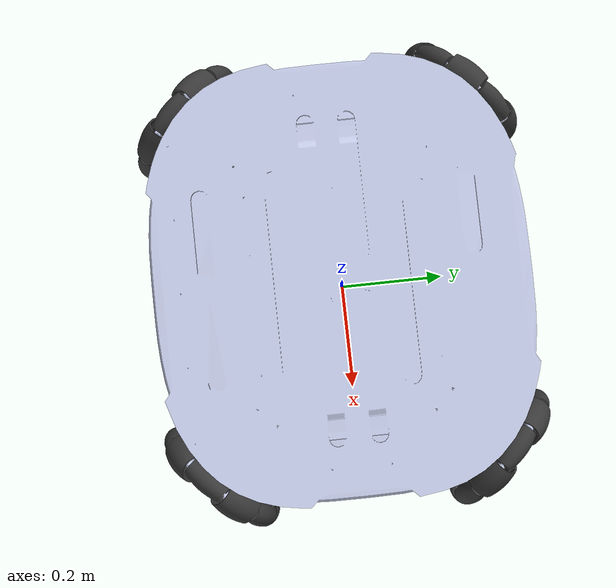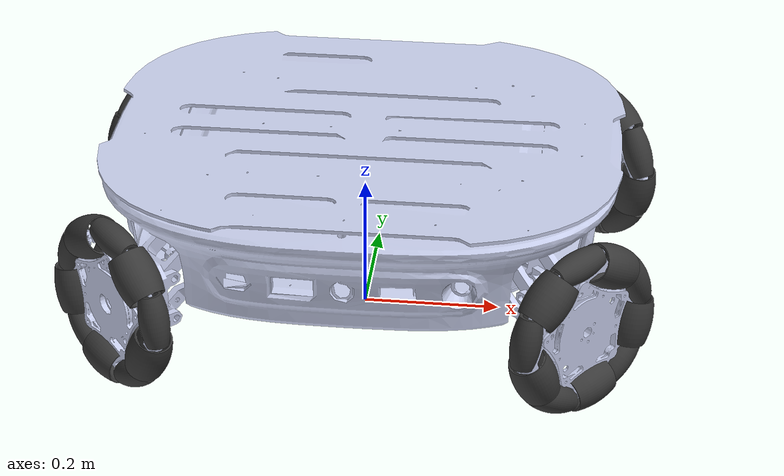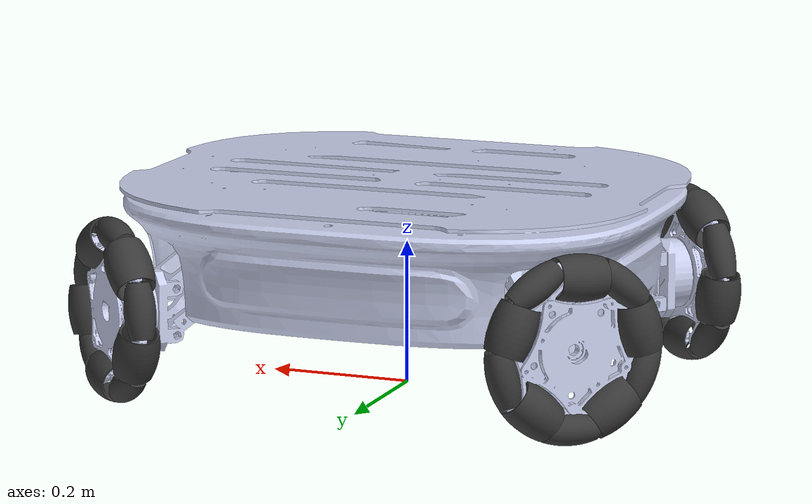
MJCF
<mujoco model="carurdf">
    <asset>
        <mesh name="base_car_link" file="meshes/base_link.STL" />
        <mesh name="wheel_1" file="meshes/wheel_1.STL" />
        <mesh name="wheel_1_1" file="meshes/wheel_1_1.STL" />
        <mesh name="wheel_1_2" file="meshes/wheel_1_2.STL" />
        <mesh name="wheel_1_3" file="meshes/wheel_1_3.STL" />
        <mesh name="wheel_1_4" file="meshes/wheel_1_4.STL" />
        <mesh name="wheel_1_5" file="meshes/wheel_1_5.STL" />
        <mesh name="wheel_1_6" file="meshes/wheel_1_6.STL" />
        <mesh name="wheel_1_7" file="meshes/wheel_1_7.STL" />
        <mesh name="wheel_1_8" file="meshes/wheel_1_8.STL" />
        <mesh name="wheel_1_9" file="meshes/wheel_1_9.STL" />
        <mesh name="wheel_1_10" file="meshes/wheel_1_10.STL" />
        <mesh name="wheel_2" file="meshes/wheel_2.STL" />
        <mesh name="wheel_2_1" file="meshes/wheel_2_1.STL" />
        <mesh name="wheel_2_2" file="meshes/wheel_2_2.STL" />
        <mesh name="wheel_2_3" file="meshes/wheel_2_3.STL" />
        <mesh name="wheel_2_4" file="meshes/wheel_2_4.STL" />
        <mesh name="wheel_2_5" file="meshes/wheel_2_5.STL" />
        <mesh name="wheel_2_6" file="meshes/wheel_2_6.STL" />
        <mesh name="wheel_2_7" file="meshes/wheel_2_7.STL" />
        <mesh name="wheel_2_8" file="meshes/wheel_2_8.STL" />
        <mesh name="wheel_2_9" file="meshes/wheel_2_9.STL" />
        <mesh name="wheel_2_10" file="meshes/wheel_2_10.STL" />
        <mesh name="wheel_3" file="meshes/wheel_3.STL" />
        <mesh name="wheel_3_1" file="meshes/wheel_3_1.STL" />
        <mesh name="wheel_3_2" file="meshes/wheel_3_2.STL" />
        <mesh name="wheel_3_3" file="meshes/wheel_3_3.STL" />
        <mesh name="wheel_3_4" file="meshes/wheel_3_4.STL" />
        <mesh name="wheel_3_5" file="meshes/wheel_3_5.STL" />
        <mesh name="wheel_3_6" file="meshes/wheel_3_6.STL" />
        <mesh name="wheel_3_7" file="meshes/wheel_3_7.STL" />
        <mesh name="wheel_3_8" file="meshes/wheel_3_8.STL" />
        <mesh name="wheel_3_9" file="meshes/wheel_3_9.STL" />
        <mesh name="wheel_3_10" file="meshes/wheel_3_10.STL" />
        <mesh name="wheel_4" file="meshes/wheel_4.STL" />
        <mesh name="wheel_4_1" file="meshes/wheel_4_1.STL" />
        <mesh name="wheel_4_2" file="meshes/wheel_4_2.STL" />
        <mesh name="wheel_4_3" file="meshes/wheel_4_3.STL" />
        <mesh name="wheel_4_4" file="meshes/wheel_4_4.STL" />
        <mesh name="wheel_4_5" file="meshes/wheel_4_5.STL" />
        <mesh name="wheel_4_6" file="meshes/wheel_4_6.STL" />
        <mesh name="wheel_4_7" file="meshes/wheel_4_7.STL" />
        <mesh name="wheel_4_8" file="meshes/wheel_4_8.STL" />
        <mesh name="wheel_4_9" file="meshes/wheel_4_9.STL" />
        <mesh name="wheel_4_10" file="meshes/wheel_4_10.STL" />
    </asset>
    <worldbody>
        <body name="base_car_link" pos="0 0 0.29">
            <inertial diaginertia="1.2869 1.2236 0.9868" mass="70.1294" pos="-0.0036 0 0.0014" quat="0.7605 -0.0133 -0.0061 0.6491" />
            <geom type="mesh" pos="0 0 -0.1" contype="0" conaffinity="0" group="1" rgba="0.792157 0.819608 0.933333 1" mesh="base_car_link" />
            <geom type="mesh" pos="0 0 -0.1" rgba="0.792157 0.819608 0.933333 1" mesh="base_car_link" />
            <joint name="base_x_slide_joint" type="slide" pos="0 0 0" axis="1 0 0" limited="true" range="-1 0.5" damping="15000"/>
            <joint name="base_y_slide_joint" type="slide" pos="0 0 0" axis="0 1 0" limited="true" range="-1 0.5" damping="15000"/>
            <joint name="base_z_hinge_joint" type="hinge" pos="0 0 0" axis="0 0 1" limited="true" range="-0.57 0.57" damping="10000"/>
            <body name="wheel_1" pos="0.320177 -0.247677 -0.1594375" quat="0.92388 0 0 -0.382683">
                <inertial pos="-0.40093 -0.0516986 0.0569862" quat="-0.27013 0.653441 0.270227 0.653469" mass="47.5454" diaginertia="2.73052 1.82823 1.18591" />
                <joint name="wheel_1_x" pos="0 0 0" axis="-1 0 0" />
                <geom type="mesh" contype="0" conaffinity="0" group="1" rgba="0.792157 0.819608 0.933333 1" mesh="wheel_1" />
                <geom type="mesh" rgba="0.792157 0.819608 0.933333 1" mesh="wheel_1" />
                <body name="wheel_1_1" pos="0.0115 -0.0134816 0.104635" quat="0.997948 0.0640252 0 0">
                    <inertial pos="0 0 0" quat="0.707107 0.707107 0 0" mass="0.061182" diaginertia="3.13175e-05 3.13175e-05 1.59889e-05" />
                    <joint name="wheel_1_1_y" pos="0 0 0" axis="0 -1 0" />
                    <geom type="mesh" contype="0" conaffinity="0" group="1" rgba="0.223529 0.223529 0.223529 1" mesh="wheel_1_1" />
                    <geom type="mesh" rgba="0.223529 0.223529 0.223529 1" mesh="wheel_1_1" />
                </body>
                <body name="wheel_1_2" pos="0.0115 0.0458003 0.0838009" quat="0.96889 -0.247491 0 0">
                    <inertial pos="0 0 0" quat="0.707107 0 0 0.707107" mass="0.0660884" diaginertia="4.9494e-05 4.42157e-05 4.42157e-05" />
                    <joint name="wheel_1_2_y" pos="0 0 0" axis="0 -1 0" />
                    <geom type="mesh" contype="0" conaffinity="0" group="1" rgba="0.223529 0.223529 0.223529 1" mesh="wheel_1_2" />
                    <geom type="mesh" rgba="0.223529 0.223529 0.223529 1" mesh="wheel_1_2" />
                </body>
                <body name="wheel_1_3" pos="0.0115 0.0953478 0.0451558" quat="0.84499 -0.534782 0 0">
                    <inertial pos="0 0 0" quat="0.707107 0.707107 0 0" mass="0.061182" diaginertia="3.13175e-05 3.13175e-05 1.59889e-05" />
                    <joint name="wheel_1_3_y" pos="0 0 0" axis="0 -1 0" />
                    <geom type="mesh" contype="0" conaffinity="0" group="1" rgba="0.223529 0.223529 0.223529 1" mesh="wheel_1_3" />
                    <geom type="mesh" rgba="0.223529 0.223529 0.223529 1" mesh="wheel_1_3" />
                </body>
                <body name="wheel_1_4" pos="0.0115 0.0938524 -0.0176627" quat="0.638377 -0.769724 0 0">
                    <inertial pos="0 0 0" quat="0.5 0.5 0.5 0.5" mass="0.0660884" diaginertia="4.9494e-05 4.42157e-05 4.42157e-05" />
                    <joint name="wheel_1_4_y" pos="0 0 0" axis="0 -1 0" />
                    <geom type="mesh" contype="0" conaffinity="0" group="1" rgba="0.223529 0.223529 0.223529 1" mesh="wheel_1_4" />
                    <geom type="mesh" rgba="0.223529 0.223529 0.223529 1" mesh="wheel_1_4" />
                </body>
                <body name="wheel_1_5" pos="0.0115 0.0724098 -0.0767273" quat="0.369275 -0.92932 0 0">
                    <inertial pos="0 0 0" quat="0.707107 0.707107 0 0" mass="0.061182" diaginertia="3.13175e-05 3.13175e-05 1.59889e-05" />
                    <joint name="wheel_1_5_y" pos="0 0 0" axis="0 -1 0" />
                    <geom type="mesh" contype="0" conaffinity="0" group="1" rgba="0.223529 0.223529 0.223529 1" mesh="wheel_1_5" />
                    <geom type="mesh" rgba="0.223529 0.223529 0.223529 1" mesh="wheel_1_5" />
                </body>
                <body name="wheel_1_6" pos="0.0115 0.0122037 -0.094717" quat="0.0640252 -0.997948 0 0">
                    <inertial pos="0 0 0" quat="0.707107 0 0 0.707107" mass="0.0660884" diaginertia="4.9494e-05 4.42157e-05 4.42157e-05" />
                    <joint name="wheel_1_6_y" pos="0 0 0" axis="0 -1 0" />
                    <geom type="mesh" contype="0" conaffinity="0" group="1" rgba="0.223529 0.223529 0.223529 1" mesh="wheel_1_6" />
                    <geom type="mesh" rgba="0.223529 0.223529 0.223529 1" mesh="wheel_1_6" />
                </body>
                <body name="wheel_1_7" pos="0.0115 -0.0505961 -0.0925758" quat="0.247491 0.96889 0 0">
                    <inertial pos="0 0 0" quat="0.707107 0.707107 0 0" mass="0.061182" diaginertia="3.13175e-05 3.13175e-05 1.59889e-05" />
                    <joint name="wheel_1_7_y" pos="0 0 0" axis="0 -1 0" />
                    <geom type="mesh" contype="0" conaffinity="0" group="1" rgba="0.223529 0.223529 0.223529 1" mesh="wheel_1_7" />
                    <geom type="mesh" rgba="0.223529 0.223529 0.223529 1" mesh="wheel_1_7" />
                </body>
                <body name="wheel_1_8" pos="0.0115 -0.0863101 -0.0408756" quat="0.534782 0.84499 0 0">
                    <inertial pos="0 0 0" quat="0.5 0.5 0.5 0.5" mass="0.0660884" diaginertia="4.9494e-05 4.42157e-05 4.42157e-05" />
                    <joint name="wheel_1_8_y" pos="0 0 0" axis="0 -1 0" />
                    <geom type="mesh" contype="0" conaffinity="0" group="1" rgba="0.223529 0.223529 0.223529 1" mesh="wheel_1_8" />
                    <geom type="mesh" rgba="0.223529 0.223529 0.223529 1" mesh="wheel_1_8" />
                </body>
                <body name="wheel_1_9" pos="0.0115 -0.10368 0.0195122" quat="0.769724 0.638377 0 0">
                    <inertial pos="0 0 0" quat="0.707107 0.707107 0 0" mass="0.061182" diaginertia="3.13175e-05 3.13175e-05 1.59889e-05" />
                    <joint name="wheel_1_9_y" pos="0 0 0" axis="0 -1 0" />
                    <geom type="mesh" contype="0" conaffinity="0" group="1" rgba="0.223529 0.223529 0.223529 1" mesh="wheel_1_9" />
                    <geom type="mesh" rgba="0.223529 0.223529 0.223529 1" mesh="wheel_1_9" />
                </body>
                <body name="wheel_1_10" pos="0.0115 -0.0655463 0.0694545" quat="0.92932 0.369275 0 0">
                    <inertial pos="0 0 0" quat="0.707107 0 0 0.707107" mass="0.0660884" diaginertia="4.9494e-05 4.42157e-05 4.42157e-05" />
                    <joint name="wheel_1_10_y" pos="0 0 0" axis="0 -1 0" />
                    <geom type="mesh" contype="0" conaffinity="0" group="1" rgba="0.223529 0.223529 0.223529 1" mesh="wheel_1_10" />
                    <geom type="mesh" rgba="0.223529 0.223529 0.223529 1" mesh="wheel_1_10" />
                </body>
            </body>
            <body name="wheel_2" pos="0.320177 0.247677 -0.1594375" quat="0.92388 0 0 0.382683">
                <inertial pos="-0.401966 0.0506629 0.0569862" quat="0.271061 0.653132 -0.270974 0.653083" mass="47.5454" diaginertia="2.73052 1.82823 1.18591" />
                <joint name="wheel_2_x" pos="0 0 0" axis="-1 0 0" />
                <geom type="mesh" contype="0" conaffinity="0" group="1" rgba="0.792157 0.819608 0.933333 1" mesh="wheel_2" />
                <geom type="mesh" rgba="0.792157 0.819608 0.933333 1" mesh="wheel_2" />
                <body name="wheel_2_1" pos="0.0115 0.0134816 0.104635" quat="0.997948 -0.0640252 0 0">
                    <inertial pos="0 0 0" quat="0.707107 0.707107 0 0" mass="0.061182" diaginertia="3.13175e-05 3.13175e-05 1.59889e-05" />
                    <joint name="wheel_2_1_y" pos="0 0 0" axis="0 1 0" />
                    <geom type="mesh" contype="0" conaffinity="0" group="1" rgba="0.223529 0.223529 0.223529 1" mesh="wheel_2_1" />
                    <geom type="mesh" rgba="0.223529 0.223529 0.223529 1" mesh="wheel_2_1" />
                </body>
                <body name="wheel_2_2" pos="0.0115 0.0655463 0.0694545" quat="0.92932 -0.369275 0 0">
                    <inertial pos="0 0 0" quat="0.5 0.5 0.5 0.5" mass="0.0660884" diaginertia="4.9494e-05 4.42157e-05 4.42157e-05" />
                    <joint name="wheel_2_2_y" pos="0 0 0" axis="0 1 0" />
                    <geom type="mesh" contype="0" conaffinity="0" group="1" rgba="0.223529 0.223529 0.223529 1" mesh="wheel_2_2" />
                    <geom type="mesh" rgba="0.223529 0.223529 0.223529 1" mesh="wheel_2_2" />
                </body>
                <body name="wheel_2_3" pos="0.0115 0.10368 0.0195122" quat="0.769724 -0.638377 0 0">
                    <inertial pos="0 0 0" quat="0.707107 0.707107 0 0" mass="0.061182" diaginertia="3.13175e-05 3.13175e-05 1.59889e-05" />
                    <joint name="wheel_2_3_y" pos="0 0 0" axis="0 1 0" />
                    <geom type="mesh" contype="0" conaffinity="0" group="1" rgba="0.223529 0.223529 0.223529 1" mesh="wheel_2_3" />
                    <geom type="mesh" rgba="0.223529 0.223529 0.223529 1" mesh="wheel_2_3" />
                </body>
                <body name="wheel_2_4" pos="0.0115 0.0863101 -0.0408756" quat="0.534782 -0.84499 0 0">
                    <inertial pos="0 0 0" quat="0.707107 0 0 0.707107" mass="0.0660884" diaginertia="4.9494e-05 4.42157e-05 4.42157e-05" />
                    <joint name="wheel_2_4_y" pos="0 0 0" axis="0 1 0" />
                    <geom type="mesh" contype="0" conaffinity="0" group="1" rgba="0.223529 0.223529 0.223529 1" mesh="wheel_2_4" />
                    <geom type="mesh" rgba="0.223529 0.223529 0.223529 1" mesh="wheel_2_4" />
                </body>
                <body name="wheel_2_5" pos="0.0115 0.0505961 -0.0925758" quat="0.247491 -0.96889 0 0">
                    <inertial pos="0 0 0" quat="0.707107 0.707107 0 0" mass="0.061182" diaginertia="3.13175e-05 3.13175e-05 1.59889e-05" />
                    <joint name="wheel_2_5_y" pos="0 0 0" axis="0 1 0" />
                    <geom type="mesh" contype="0" conaffinity="0" group="1" rgba="0.223529 0.223529 0.223529 1" mesh="wheel_2_5" />
                    <geom type="mesh" rgba="0.223529 0.223529 0.223529 1" mesh="wheel_2_5" />
                </body>
                <body name="wheel_2_6" pos="0.0115 -0.0122037 -0.094717" quat="0.0640252 0.997948 0 0">
                    <inertial pos="0 0 0" quat="0.707107 0 0 0.707107" mass="0.0660884" diaginertia="4.9494e-05 4.42157e-05 4.42157e-05" />
                    <joint name="wheel_2_6_y" pos="0 0 0" axis="0 1 0" />
                    <geom type="mesh" contype="0" conaffinity="0" group="1" rgba="0.223529 0.223529 0.223529 1" mesh="wheel_2_6" />
                    <geom type="mesh" rgba="0.223529 0.223529 0.223529 1" mesh="wheel_2_6" />
                </body>
                <body name="wheel_2_7" pos="0.0115 -0.0724098 -0.0767273" quat="0.369275 0.92932 0 0">
                    <inertial pos="0 0 0" quat="0.707107 0.707107 0 0" mass="0.061182" diaginertia="3.13175e-05 3.13175e-05 1.59889e-05" />
                    <joint name="wheel_2_7_y" pos="0 0 0" axis="0 1 0" />
                    <geom type="mesh" contype="0" conaffinity="0" group="1" rgba="0.223529 0.223529 0.223529 1" mesh="wheel_2_7" />
                    <geom type="mesh" rgba="0.223529 0.223529 0.223529 1" mesh="wheel_2_7" />
                </body>
                <body name="wheel_2_8" pos="0.0115 -0.0938524 -0.0176627" quat="0.638377 0.769724 0 0">
                    <inertial pos="0 0 0" quat="0.707107 0 0 0.707107" mass="0.0660884" diaginertia="4.9494e-05 4.42157e-05 4.42157e-05" />
                    <joint name="wheel_2_8_y" pos="0 0 0" axis="0 1 0" />
                    <geom type="mesh" contype="0" conaffinity="0" group="1" rgba="0.223529 0.223529 0.223529 1" mesh="wheel_2_8" />
                    <geom type="mesh" rgba="0.223529 0.223529 0.223529 1" mesh="wheel_2_8" />
                </body>
                <body name="wheel_2_9" pos="0.0115 -0.0953478 0.0451558" quat="0.84499 0.534782 0 0">
                    <inertial pos="0 0 0" quat="0.707107 0.707107 0 0" mass="0.061182" diaginertia="3.13175e-05 3.13175e-05 1.59889e-05" />
                    <joint name="wheel_2_9_y" pos="0 0 0" axis="0 1 0" />
                    <geom type="mesh" contype="0" conaffinity="0" group="1" rgba="0.223529 0.223529 0.223529 1" mesh="wheel_2_9" />
                    <geom type="mesh" rgba="0.223529 0.223529 0.223529 1" mesh="wheel_2_9" />
                </body>
                <body name="wheel_2_10" pos="0.0115 -0.0458003 0.0838009" quat="0.96889 0.247491 0 0">
                    <inertial pos="0 0 0" quat="0.707107 0 0 0.707107" mass="0.0660884" diaginertia="4.9494e-05 4.42157e-05 4.42157e-05" />
                    <joint name="wheel_2_10_y" pos="0 0 0" axis="0 1 0" />
                    <geom type="mesh" contype="0" conaffinity="0" group="1" rgba="0.223529 0.223529 0.223529 1" mesh="wheel_2_10" />
                    <geom type="mesh" rgba="0.223529 0.223529 0.223529 1" mesh="wheel_2_10" />
                </body>
            </body>
            <body name="wheel_3" pos="-0.320177 0.247677 -0.1594375" quat="0.382683 0 0 0.92388">
                <inertial pos="-0.402135 -0.0508319 0.0569862" quat="-0.270227 0.653469 0.27013 0.653441" mass="47.5454" diaginertia="2.73052 1.82823 1.18591" />
                <joint name="wheel_3_x" pos="0 0 0" axis="-1 0 0" />
                <geom type="mesh" contype="0" conaffinity="0" group="1" rgba="0.792157 0.819608 0.933333 1" mesh="wheel_3" />
                <geom type="mesh" rgba="0.792157 0.819608 0.933333 1" mesh="wheel_3" />
                <body name="wheel_3_1" pos="0.0115 0.00556754 0.0953376" quat="0.999575 -0.0291618 0 0">
                    <inertial pos="0 0 0" quat="0.707107 0 0 0.707107" mass="0.0660884" diaginertia="4.9494e-05 4.42157e-05 4.42157e-05" />
                    <joint name="wheel_3_1_y" pos="0 0 0" axis="0 1 0" />
                    <geom type="mesh" contype="0" conaffinity="0" group="1" rgba="0.223529 0.223529 0.223529 1" mesh="wheel_3_1" />
                    <geom type="mesh" rgba="0.223529 0.223529 0.223529 1" mesh="wheel_3_1" />
                </body>
                <body name="wheel_3_2" pos="0.0115 0.0668818 0.0815909" quat="0.941641 -0.33662 0 0">
                    <inertial pos="0 0 0" quat="0.707107 0.707107 0 0" mass="0.061182" diaginertia="3.13175e-05 3.13175e-05 1.59889e-05" />
                    <joint name="wheel_3_2_y" pos="0 0 0" axis="0 1 0" />
                    <geom type="mesh" contype="0" conaffinity="0" group="1" rgba="0.223529 0.223529 0.223529 1" mesh="wheel_3_2" />
                    <geom type="mesh" rgba="0.223529 0.223529 0.223529 1" mesh="wheel_3_2" />
                </body>
                <body name="wheel_3_3" pos="0.0115 0.0923919 0.0241659" quat="0.791532 -0.611128 0 0">
                    <inertial pos="0 0 0" quat="0.707107 0 0 0.707107" mass="0.0660884" diaginertia="4.9494e-05 4.42157e-05 4.42157e-05" />
                    <joint name="wheel_3_3_y" pos="0 0 0" axis="0 1 0" />
                    <geom type="mesh" contype="0" conaffinity="0" group="1" rgba="0.223529 0.223529 0.223529 1" mesh="wheel_3_3" />
                    <geom type="mesh" rgba="0.223529 0.223529 0.223529 1" mesh="wheel_3_3" />
                </body>
                <body name="wheel_3_4" pos="0.0115 0.0982652 -0.0383953" quat="0.563943 -0.825814 0 0">
                    <inertial pos="0 0 0" quat="0.707107 0.707107 0 0" mass="0.061182" diaginertia="3.13175e-05 3.13175e-05 1.59889e-05" />
                    <joint name="wheel_3_4_y" pos="0 0 0" axis="0 1 0" />
                    <geom type="mesh" contype="0" conaffinity="0" group="1" rgba="0.223529 0.223529 0.223529 1" mesh="wheel_3_4" />
                    <geom type="mesh" rgba="0.223529 0.223529 0.223529 1" mesh="wheel_3_4" />
                </body>
                <body name="wheel_3_5" pos="0.0115 0.0515338 -0.0804022" quat="0.281151 -0.959664 0 0">
                    <inertial pos="0 0 0" quat="0.707107 0 0 0.707107" mass="0.0660884" diaginertia="4.9494e-05 4.42157e-05 4.42157e-05" />
                    <joint name="wheel_3_5_y" pos="0 0 0" axis="0 1 0" />
                    <geom type="mesh" contype="0" conaffinity="0" group="1" rgba="0.223529 0.223529 0.223529 1" mesh="wheel_3_5" />
                    <geom type="mesh" rgba="0.223529 0.223529 0.223529 1" mesh="wheel_3_5" />
                </body>
                <body name="wheel_3_6" pos="0.0115 -0.00615053 -0.105321" quat="0.0291618 0.999575 0 0">
                    <inertial pos="0 0 0" quat="0.707107 0.707107 0 0" mass="0.061182" diaginertia="3.13175e-05 3.13175e-05 1.59889e-05" />
                    <joint name="wheel_3_6_y" pos="0 0 0" axis="0 1 0" />
                    <geom type="mesh" contype="0" conaffinity="0" group="1" rgba="0.223529 0.223529 0.223529 1" mesh="wheel_3_6" />
                    <geom type="mesh" rgba="0.223529 0.223529 0.223529 1" mesh="wheel_3_6" />
                </body>
                <body name="wheel_3_7" pos="0.0115 -0.0605423 -0.0738572" quat="0.33662 0.941641 0 0">
                    <inertial pos="0 0 0" quat="0.707107 0 0 0.707107" mass="0.0660884" diaginertia="4.9494e-05 4.42157e-05 4.42157e-05" />
                    <joint name="wheel_3_7_y" pos="0 0 0" axis="0 1 0" />
                    <geom type="mesh" contype="0" conaffinity="0" group="1" rgba="0.223529 0.223529 0.223529 1" mesh="wheel_3_7" />
                    <geom type="mesh" rgba="0.223529 0.223529 0.223529 1" mesh="wheel_3_7" />
                </body>
                <body name="wheel_3_8" pos="0.0115 -0.102066 -0.0266963" quat="0.611128 0.791532 0 0">
                    <inertial pos="0 0 0" quat="0.707107 0.707107 0 0" mass="0.061182" diaginertia="3.13175e-05 3.13175e-05 1.59889e-05" />
                    <joint name="wheel_3_8_y" pos="0 0 0" axis="0 1 0" />
                    <geom type="mesh" contype="0" conaffinity="0" group="1" rgba="0.223529 0.223529 0.223529 1" mesh="wheel_3_8" />
                    <geom type="mesh" rgba="0.223529 0.223529 0.223529 1" mesh="wheel_3_8" />
                </body>
                <body name="wheel_3_9" pos="0.0115 -0.088951 0.034756" quat="0.825814 0.563943 0 0">
                    <inertial pos="0 0 0" quat="0.707107 0 0 0.707107" mass="0.0660884" diaginertia="4.9494e-05 4.42157e-05 4.42157e-05" />
                    <joint name="wheel_3_9_y" pos="0 0 0" axis="0 1 0" />
                    <geom type="mesh" contype="0" conaffinity="0" group="1" rgba="0.223529 0.223529 0.223529 1" mesh="wheel_3_9" />
                    <geom type="mesh" rgba="0.223529 0.223529 0.223529 1" mesh="wheel_3_9" />
                </body>
                <body name="wheel_3_10" pos="0.0115 -0.05693 0.0888213" quat="0.959664 0.281151 0 0">
                    <inertial pos="0 0 0" quat="0.707107 0.707107 0 0" mass="0.061182" diaginertia="3.13175e-05 3.13175e-05 1.59889e-05" />
                    <joint name="wheel_3_10_y" pos="0 0 0" axis="0 1 0" />
                    <geom type="mesh" contype="0" conaffinity="0" group="1" rgba="0.223529 0.223529 0.223529 1" mesh="wheel_3_10" />
                    <geom type="mesh" rgba="0.223529 0.223529 0.223529 1" mesh="wheel_3_10" />
                </body>
            </body>
            <body name="wheel_4" pos="-0.320177 -0.247677 -0.1594375" quat="0.382683 0 0 -0.92388">
                <inertial pos="-0.401099 0.0518676 0.0569862" quat="0.270974 0.653083 -0.271061 0.653132" mass="47.5454" diaginertia="2.73052 1.82823 1.18591" />
                <joint name="wheel_4_x" pos="0 0 0" axis="-1 0 0" />
                <geom type="mesh" contype="0" conaffinity="0" group="1" rgba="0.792157 0.819608 0.933333 1" mesh="wheel_4" />
                <geom type="mesh" rgba="0.792157 0.819608 0.933333 1" mesh="wheel_4" />
                <body name="wheel_4_1" pos="0.0115 0.0134816 0.104635" quat="0.997948 -0.0640252 0 0">
                    <inertial pos="0 0 0" quat="0.707107 0.707107 0 0" mass="0.061182" diaginertia="3.13175e-05 3.13175e-05 1.59889e-05" />
                    <joint name="wheel_4_1_y" pos="0 0 0" axis="0 1 0" />
                    <geom type="mesh" contype="0" conaffinity="0" group="1" rgba="0.223529 0.223529 0.223529 1" mesh="wheel_4_1" />
                    <geom type="mesh" rgba="0.223529 0.223529 0.223529 1" mesh="wheel_4_1" />
                </body>
                <body name="wheel_4_2" pos="0.0115 0.0655463 0.0694545" quat="0.92932 -0.369275 0 0">
                    <inertial pos="0 0 0" quat="0.5 0.5 0.5 0.5" mass="0.0660884" diaginertia="4.9494e-05 4.42157e-05 4.42157e-05" />
                    <joint name="wheel_4_2_y" pos="0 0 0" axis="0 1 0" />
                    <geom type="mesh" contype="0" conaffinity="0" group="1" rgba="0.223529 0.223529 0.223529 1" mesh="wheel_4_2" />
                    <geom type="mesh" rgba="0.223529 0.223529 0.223529 1" mesh="wheel_4_2" />
                </body>
                <body name="wheel_4_3" pos="0.0115 0.10368 0.0195122" quat="0.769724 -0.638377 0 0">
                    <inertial pos="0 0 0" quat="0.707107 0.707107 0 0" mass="0.061182" diaginertia="3.13175e-05 3.13175e-05 1.59889e-05" />
                    <joint name="wheel_4_3_y" pos="0 0 0" axis="0 1 0" />
                    <geom type="mesh" contype="0" conaffinity="0" group="1" rgba="0.223529 0.223529 0.223529 1" mesh="wheel_4_3" />
                    <geom type="mesh" rgba="0.223529 0.223529 0.223529 1" mesh="wheel_4_3" />
                </body>
                <body name="wheel_4_4" pos="0.0115 0.0863101 -0.0408756" quat="0.534782 -0.84499 0 0">
                    <inertial pos="0 0 0" quat="0.707107 0 0 0.707107" mass="0.0660884" diaginertia="4.9494e-05 4.42157e-05 4.42157e-05" />
                    <joint name="wheel_4_4_y" pos="0 0 0" axis="0 1 0" />
                    <geom type="mesh" contype="0" conaffinity="0" group="1" rgba="0.223529 0.223529 0.223529 1" mesh="wheel_4_4" />
                    <geom type="mesh" rgba="0.223529 0.223529 0.223529 1" mesh="wheel_4_4" />
                </body>
                <body name="wheel_4_5" pos="0.0115 0.0505961 -0.0925758" quat="0.247491 -0.96889 0 0">
                    <inertial pos="0 0 0" quat="0.707107 0.707107 0 0" mass="0.061182" diaginertia="3.13175e-05 3.13175e-05 1.59889e-05" />
                    <joint name="wheel_4_5_y" pos="0 0 0" axis="0 1 0" />
                    <geom type="mesh" contype="0" conaffinity="0" group="1" rgba="0.223529 0.223529 0.223529 1" mesh="wheel_4_5" />
                    <geom type="mesh" rgba="0.223529 0.223529 0.223529 1" mesh="wheel_4_5" />
                </body>
                <body name="wheel_4_6" pos="0.0115 -0.0122037 -0.094717" quat="0.0640252 0.997948 0 0">
                    <inertial pos="0 0 0" quat="0.707107 0 0 0.707107" mass="0.0660884" diaginertia="4.9494e-05 4.42157e-05 4.42157e-05" />
                    <joint name="wheel_4_6_y" pos="0 0 0" axis="0 1 0" />
                    <geom type="mesh" contype="0" conaffinity="0" group="1" rgba="0.223529 0.223529 0.223529 1" mesh="wheel_4_6" />
                    <geom type="mesh" rgba="0.223529 0.223529 0.223529 1" mesh="wheel_4_6" />
                </body>
                <body name="wheel_4_7" pos="0.0115 -0.0724098 -0.0767273" quat="0.369275 0.92932 0 0">
                    <inertial pos="0 0 0" quat="0.707107 0.707107 0 0" mass="0.061182" diaginertia="3.13175e-05 3.13175e-05 1.59889e-05" />
                    <joint name="wheel_4_7_y" pos="0 0 0" axis="0 1 0" />
                    <geom type="mesh" contype="0" conaffinity="0" group="1" rgba="0.223529 0.223529 0.223529 1" mesh="wheel_4_7" />
                    <geom type="mesh" rgba="0.223529 0.223529 0.223529 1" mesh="wheel_4_7" />
                </body>
                <body name="wheel_4_8" pos="0.0115 -0.0938524 -0.0176627" quat="0.638377 0.769724 0 0">
                    <inertial pos="0 0 0" quat="0.707107 0 0 0.707107" mass="0.0660884" diaginertia="4.9494e-05 4.42157e-05 4.42157e-05" />
                    <joint name="wheel_4_8_y" pos="0 0 0" axis="0 1 0" />
                    <geom type="mesh" contype="0" conaffinity="0" group="1" rgba="0.223529 0.223529 0.223529 1" mesh="wheel_4_8" />
                    <geom type="mesh" rgba="0.223529 0.223529 0.223529 1" mesh="wheel_4_8" />
                </body>
                <body name="wheel_4_9" pos="0.0115 -0.0953478 0.0451558" quat="0.84499 0.534782 0 0">
                    <inertial pos="0 0 0" quat="0.707107 0.707107 0 0" mass="0.061182" diaginertia="3.13175e-05 3.13175e-05 1.59889e-05" />
                    <joint name="wheel_4_9_y" pos="0 0 0" axis="0 1 0" />
                    <geom type="mesh" contype="0" conaffinity="0" group="1" rgba="0.223529 0.223529 0.223529 1" mesh="wheel_4_9" />
                    <geom type="mesh" rgba="0.223529 0.223529 0.223529 1" mesh="wheel_4_9" />
                </body>
                <body name="wheel_4_10" pos="0.0115 -0.0458003 0.0838009" quat="0.96889 0.247491 0 0">
                    <inertial pos="0 0 0" quat="0.5 0.5 0.5 0.5" mass="0.0660884" diaginertia="4.9494e-05 4.42157e-05 4.42157e-05" />
                    <joint name="wheel_4_10_y" pos="0 0 0" axis="0 1 0" />
                    <geom type="mesh" contype="0" conaffinity="0" group="1" rgba="0.223529 0.223529 0.223529 1" mesh="wheel_4_10" />
                    <geom type="mesh" rgba="0.223529 0.223529 0.223529 1" mesh="wheel_4_10" />
                </body>
            </body>
        </body>
    </worldbody>

    <actuator>
    </actuator>
</mujoco>
